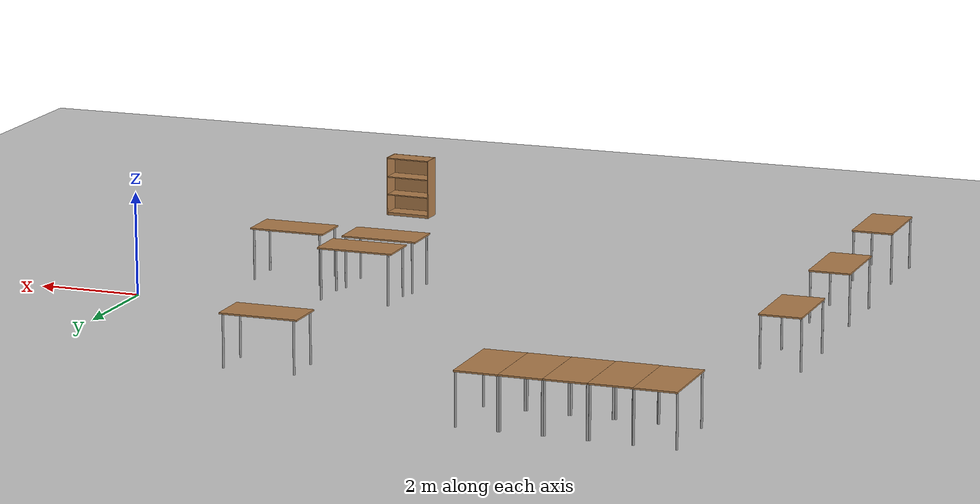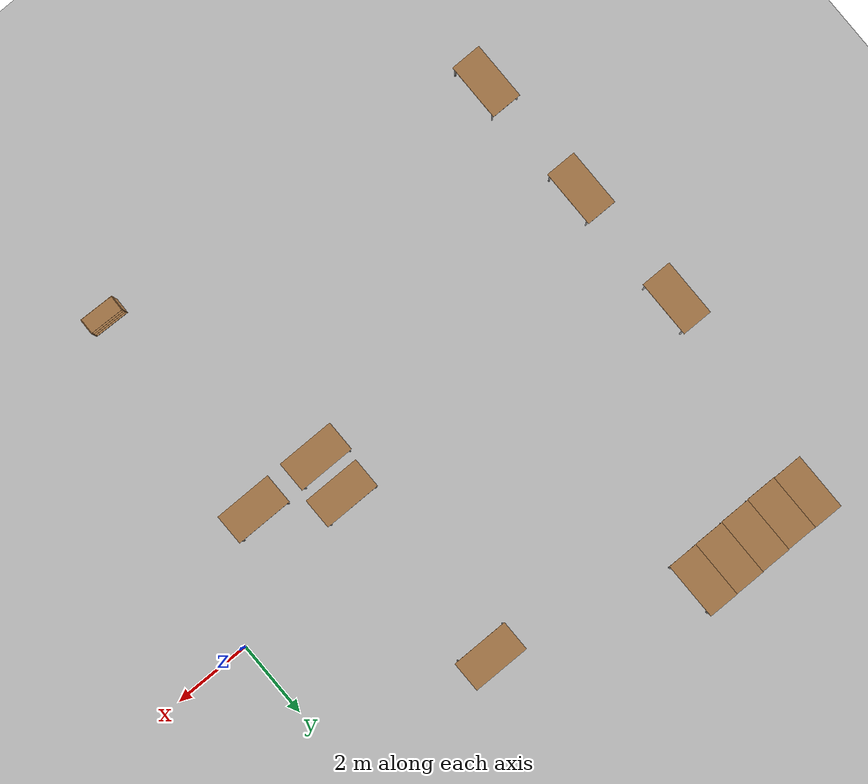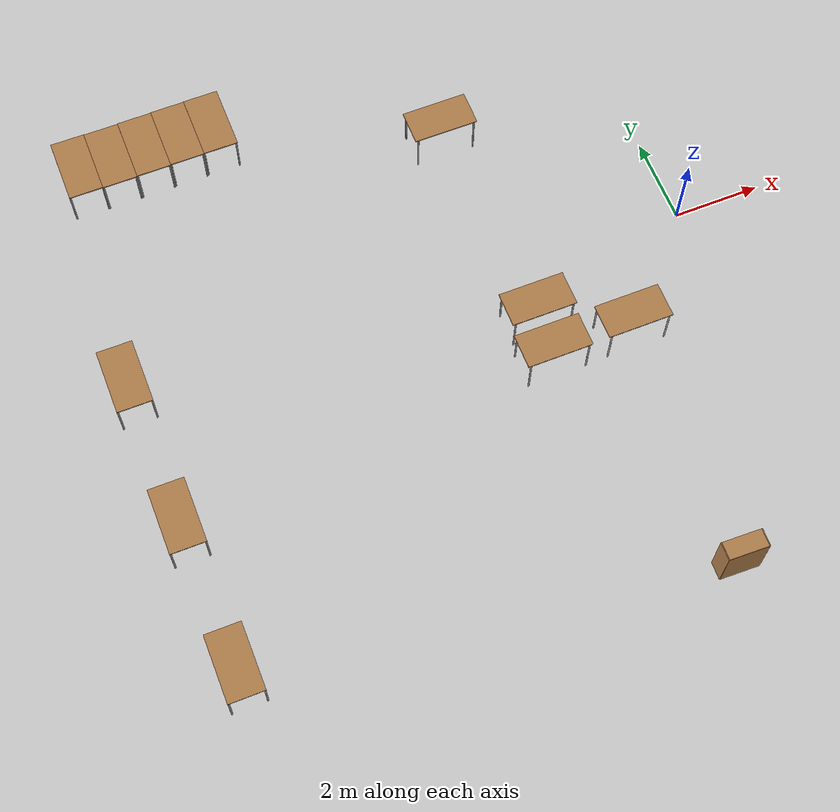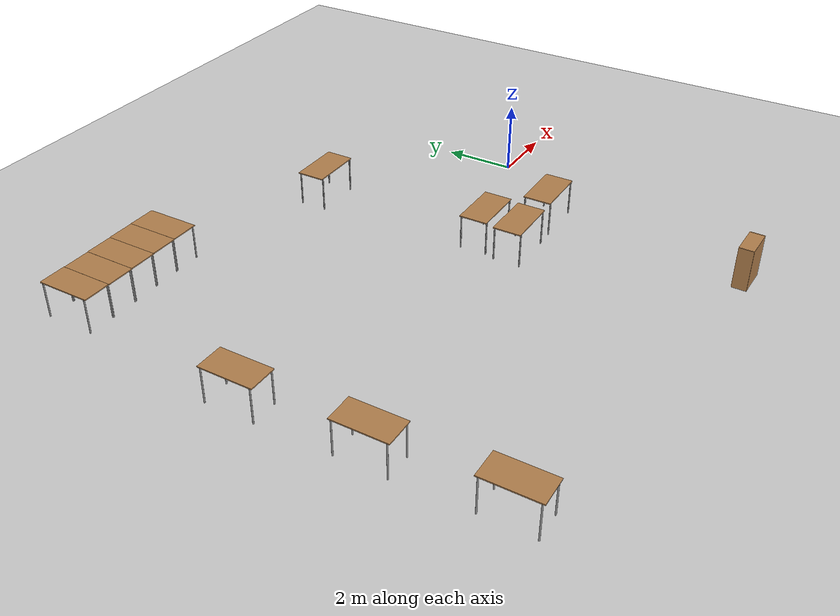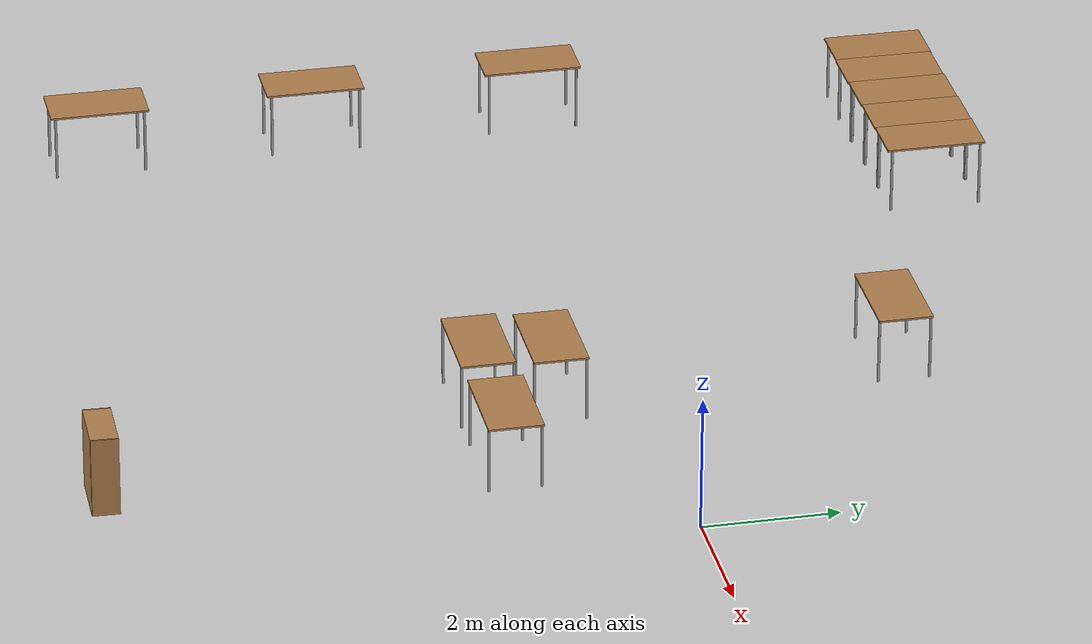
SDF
<sdf version="1.6">
 <world name="default">
  <model name="ground_plane">
   <static>1</static>
   <link name="link">
    <collision name="collision">
     <geometry><plane><normal>0 0 1</normal><size>100 100</size></plane></geometry>
     <surface>
      <contact><collide_bitmask>65535</collide_bitmask></contact>
      <friction><ode><mu>100</mu><mu2>50</mu2></ode></friction>
     </surface>
    </collision>
    <visual name="visual">
     <cast_shadows>0</cast_shadows>
     <geometry><plane><normal>0 0 1</normal><size>100 100</size></plane></geometry>
     <material>
      <script><uri>file://media/materials/scripts/gazebo.material</uri><name>Gazebo/Grey</name></script>
     </material>
    </visual>
   </link>
  </model>
  <model name="table">
   <static>1</static>
   <link name="link">
    <collision name="surface">
     <pose>0 0 1 0 -0 0</pose>
     <geometry><box><size>1.5 0.8 0.03</size></box></geometry>
     <surface><friction><ode><mu>0.6</mu><mu2>0.6</mu2></ode></friction></surface>
    </collision>
    <visual name="visual1">
     <pose>0 0 1 0 -0 0</pose>
     <geometry><box><size>1.5 0.8 0.03</size></box></geometry>
     <material>
      <script><uri>file://media/materials/scripts/gazebo.material</uri><name>Gazebo/Wood</name></script>
     </material>
    </visual>
    <collision name="front_left_leg">
     <pose>0.68 0.38 0.5 0 -0 0</pose>
     <geometry><cylinder><radius>0.02</radius><length>1</length></cylinder></geometry>
    </collision>
    <visual name="front_left_leg">
     <pose>0.68 0.38 0.5 0 -0 0</pose>
     <geometry><cylinder><radius>0.02</radius><length>1</length></cylinder></geometry>
     <material>
      <script><uri>file://media/materials/scripts/gazebo.material</uri><name>Gazebo/Grey</name></script>
     </material>
    </visual>
    <collision name="front_right_leg">
     <pose>0.68 -0.38 0.5 0 -0 0</pose>
     <geometry><cylinder><radius>0.02</radius><length>1</length></cylinder></geometry>
    </collision>
    <visual name="front_right_leg">
     <pose>0.68 -0.38 0.5 0 -0 0</pose>
     <geometry><cylinder><radius>0.02</radius><length>1</length></cylinder></geometry>
     <material>
      <script><uri>file://media/materials/scripts/gazebo.material</uri><name>Gazebo/Grey</name></script>
     </material>
    </visual>
    <collision name="back_right_leg">
     <pose>-0.68 -0.38 0.5 0 -0 0</pose>
     <geometry><cylinder><radius>0.02</radius><length>1</length></cylinder></geometry>
    </collision>
    <visual name="back_right_leg">
     <pose>-0.68 -0.38 0.5 0 -0 0</pose>
     <geometry><cylinder><radius>0.02</radius><length>1</length></cylinder></geometry>
     <material>
      <script><uri>file://media/materials/scripts/gazebo.material</uri><name>Gazebo/Grey</name></script>
     </material>
    </visual>
    <collision name="back_left_leg">
     <pose>-0.68 0.38 0.5 0 -0 0</pose>
     <geometry><cylinder><radius>0.02</radius><length>1</length></cylinder></geometry>
    </collision>
    <visual name="back_left_leg">
     <pose>-0.68 0.38 0.5 0 -0 0</pose>
     <geometry><cylinder><radius>0.02</radius><length>1</length></cylinder></geometry>
     <material>
      <script><uri>file://media/materials/scripts/gazebo.material</uri><name>Gazebo/Grey</name></script>
     </material>
    </visual>
   </link>
   <pose>-4.15428 -2.32364 0 0 -0 0</pose>
  </model>
  <model name="table_0">
   <static>1</static>
   <link name="link">
    <collision name="surface">
     <pose>0 0 1 0 -0 0</pose>
     <geometry><box><size>1.5 0.8 0.03</size></box></geometry>
     <surface><friction><ode><mu>0.6</mu><mu2>0.6</mu2></ode></friction></surface>
    </collision>
    <visual name="visual1">
     <pose>0 0 1 0 -0 0</pose>
     <geometry><box><size>1.5 0.8 0.03</size></box></geometry>
     <material>
      <script><uri>file://media/materials/scripts/gazebo.material</uri><name>Gazebo/Wood</name></script>
     </material>
    </visual>
    <collision name="front_left_leg">
     <pose>0.68 0.38 0.5 0 -0 0</pose>
     <geometry><cylinder><radius>0.02</radius><length>1</length></cylinder></geometry>
    </collision>
    <visual name="front_left_leg">
     <pose>0.68 0.38 0.5 0 -0 0</pose>
     <geometry><cylinder><radius>0.02</radius><length>1</length></cylinder></geometry>
     <material>
      <script><uri>file://media/materials/scripts/gazebo.material</uri><name>Gazebo/Grey</name></script>
     </material>
    </visual>
    <collision name="front_right_leg">
     <pose>0.68 -0.38 0.5 0 -0 0</pose>
     <geometry><cylinder><radius>0.02</radius><length>1</length></cylinder></geometry>
    </collision>
    <visual name="front_right_leg">
     <pose>0.68 -0.38 0.5 0 -0 0</pose>
     <geometry><cylinder><radius>0.02</radius><length>1</length></cylinder></geometry>
     <material>
      <script><uri>file://media/materials/scripts/gazebo.material</uri><name>Gazebo/Grey</name></script>
     </material>
    </visual>
    <collision name="back_right_leg">
     <pose>-0.68 -0.38 0.5 0 -0 0</pose>
     <geometry><cylinder><radius>0.02</radius><length>1</length></cylinder></geometry>
    </collision>
    <visual name="back_right_leg">
     <pose>-0.68 -0.38 0.5 0 -0 0</pose>
     <geometry><cylinder><radius>0.02</radius><length>1</length></cylinder></geometry>
     <material>
      <script><uri>file://media/materials/scripts/gazebo.material</uri><name>Gazebo/Grey</name></script>
     </material>
    </visual>
    <collision name="back_left_leg">
     <pose>-0.68 0.38 0.5 0 -0 0</pose>
     <geometry><cylinder><radius>0.02</radius><length>1</length></cylinder></geometry>
    </collision>
    <visual name="back_left_leg">
     <pose>-0.68 0.38 0.5 0 -0 0</pose>
     <geometry><cylinder><radius>0.02</radius><length>1</length></cylinder></geometry>
     <material>
      <script><uri>file://media/materials/scripts/gazebo.material</uri><name>Gazebo/Grey</name></script>
     </material>
    </visual>
   </link>
   <pose>-2.26331 -2.3073 0 0 -0 0</pose>
  </model>
  <model name="table_1">
   <static>1</static>
   <link name="link">
    <collision name="surface">
     <pose>0 0 1 0 -0 0</pose>
     <geometry><box><size>1.5 0.8 0.03</size></box></geometry>
     <surface><friction><ode><mu>0.6</mu><mu2>0.6</mu2></ode></friction></surface>
    </collision>
    <visual name="visual1">
     <pose>0 0 1 0 -0 0</pose>
     <geometry><box><size>1.5 0.8 0.03</size></box></geometry>
     <material>
      <script><uri>file://media/materials/scripts/gazebo.material</uri><name>Gazebo/Wood</name></script>
     </material>
    </visual>
    <collision name="front_left_leg">
     <pose>0.68 0.38 0.5 0 -0 0</pose>
     <geometry><cylinder><radius>0.02</radius><length>1</length></cylinder></geometry>
    </collision>
    <visual name="front_left_leg">
     <pose>0.68 0.38 0.5 0 -0 0</pose>
     <geometry><cylinder><radius>0.02</radius><length>1</length></cylinder></geometry>
     <material>
      <script><uri>file://media/materials/scripts/gazebo.material</uri><name>Gazebo/Grey</name></script>
     </material>
    </visual>
    <collision name="front_right_leg">
     <pose>0.68 -0.38 0.5 0 -0 0</pose>
     <geometry><cylinder><radius>0.02</radius><length>1</length></cylinder></geometry>
    </collision>
    <visual name="front_right_leg">
     <pose>0.68 -0.38 0.5 0 -0 0</pose>
     <geometry><cylinder><radius>0.02</radius><length>1</length></cylinder></geometry>
     <material>
      <script><uri>file://media/materials/scripts/gazebo.material</uri><name>Gazebo/Grey</name></script>
     </material>
    </visual>
    <collision name="back_right_leg">
     <pose>-0.68 -0.38 0.5 0 -0 0</pose>
     <geometry><cylinder><radius>0.02</radius><length>1</length></cylinder></geometry>
    </collision>
    <visual name="back_right_leg">
     <pose>-0.68 -0.38 0.5 0 -0 0</pose>
     <geometry><cylinder><radius>0.02</radius><length>1</length></cylinder></geometry>
     <material>
      <script><uri>file://media/materials/scripts/gazebo.material</uri><name>Gazebo/Grey</name></script>
     </material>
    </visual>
    <collision name="back_left_leg">
     <pose>-0.68 0.38 0.5 0 -0 0</pose>
     <geometry><cylinder><radius>0.02</radius><length>1</length></cylinder></geometry>
    </collision>
    <visual name="back_left_leg">
     <pose>-0.68 0.38 0.5 0 -0 0</pose>
     <geometry><cylinder><radius>0.02</radius><length>1</length></cylinder></geometry>
     <material>
      <script><uri>file://media/materials/scripts/gazebo.material</uri><name>Gazebo/Grey</name></script>
     </material>
    </visual>
   </link>
   <pose>-4.07153 -1.28187 0 0 -0 0</pose>
  </model>
  <model name="table_12">
   <static>1</static>
   <link name="link">
    <collision name="surface">
     <pose>0 0 1 0 -0 0</pose>
     <geometry><box><size>1.5 0.8 0.03</size></box></geometry>
     <surface><friction><ode><mu>0.6</mu><mu2>0.6</mu2></ode></friction></surface>
    </collision>
    <visual name="visual1">
     <pose>0 0 1 0 -0 0</pose>
     <geometry><box><size>1.5 0.8 0.03</size></box></geometry>
     <material>
      <script><uri>file://media/materials/scripts/gazebo.material</uri><name>Gazebo/Wood</name></script>
     </material>
    </visual>
    <collision name="front_left_leg">
     <pose>0.68 0.38 0.5 0 -0 0</pose>
     <geometry><cylinder><radius>0.02</radius><length>1</length></cylinder></geometry>
    </collision>
    <visual name="front_left_leg">
     <pose>0.68 0.38 0.5 0 -0 0</pose>
     <geometry><cylinder><radius>0.02</radius><length>1</length></cylinder></geometry>
     <material>
      <script><uri>file://media/materials/scripts/gazebo.material</uri><name>Gazebo/Grey</name></script>
     </material>
    </visual>
    <collision name="front_right_leg">
     <pose>0.68 -0.38 0.5 0 -0 0</pose>
     <geometry><cylinder><radius>0.02</radius><length>1</length></cylinder></geometry>
    </collision>
    <visual name="front_right_leg">
     <pose>0.68 -0.38 0.5 0 -0 0</pose>
     <geometry><cylinder><radius>0.02</radius><length>1</length></cylinder></geometry>
     <material>
      <script><uri>file://media/materials/scripts/gazebo.material</uri><name>Gazebo/Grey</name></script>
     </material>
    </visual>
    <collision name="back_right_leg">
     <pose>-0.68 -0.38 0.5 0 -0 0</pose>
     <geometry><cylinder><radius>0.02</radius><length>1</length></cylinder></geometry>
    </collision>
    <visual name="back_right_leg">
     <pose>-0.68 -0.38 0.5 0 -0 0</pose>
     <geometry><cylinder><radius>0.02</radius><length>1</length></cylinder></geometry>
     <material>
      <script><uri>file://media/materials/scripts/gazebo.material</uri><name>Gazebo/Grey</name></script>
     </material>
    </visual>
    <collision name="back_left_leg">
     <pose>-0.68 0.38 0.5 0 -0 0</pose>
     <geometry><cylinder><radius>0.02</radius><length>1</length></cylinder></geometry>
    </collision>
    <visual name="back_left_leg">
     <pose>-0.68 0.38 0.5 0 -0 0</pose>
     <geometry><cylinder><radius>0.02</radius><length>1</length></cylinder></geometry>
     <material>
      <script><uri>file://media/materials/scripts/gazebo.material</uri><name>Gazebo/Grey</name></script>
     </material>
    </visual>
   </link>
   <pose>-4.30223 3.82653 0 0 -0 0</pose>
  </model>
  <model name="table_13">
   <static>1</static>
   <link name="link">
    <collision name="surface">
     <pose>0 0 1 0 -0 0</pose>
     <geometry><box><size>1.5 0.8 0.03</size></box></geometry>
     <surface><friction><ode><mu>0.6</mu><mu2>0.6</mu2></ode></friction></surface>
    </collision>
    <visual name="visual1">
     <pose>0 0 1 0 -0 0</pose>
     <geometry><box><size>1.5 0.8 0.03</size></box></geometry>
     <material>
      <script><uri>file://media/materials/scripts/gazebo.material</uri><name>Gazebo/Wood</name></script>
     </material>
    </visual>
    <collision name="front_left_leg">
     <pose>0.68 0.38 0.5 0 -0 0</pose>
     <geometry><cylinder><radius>0.02</radius><length>1</length></cylinder></geometry>
    </collision>
    <visual name="front_left_leg">
     <pose>0.68 0.38 0.5 0 -0 0</pose>
     <geometry><cylinder><radius>0.02</radius><length>1</length></cylinder></geometry>
     <material>
      <script><uri>file://media/materials/scripts/gazebo.material</uri><name>Gazebo/Grey</name></script>
     </material>
    </visual>
    <collision name="front_right_leg">
     <pose>0.68 -0.38 0.5 0 -0 0</pose>
     <geometry><cylinder><radius>0.02</radius><length>1</length></cylinder></geometry>
    </collision>
    <visual name="front_right_leg">
     <pose>0.68 -0.38 0.5 0 -0 0</pose>
     <geometry><cylinder><radius>0.02</radius><length>1</length></cylinder></geometry>
     <material>
      <script><uri>file://media/materials/scripts/gazebo.material</uri><name>Gazebo/Grey</name></script>
     </material>
    </visual>
    <collision name="back_right_leg">
     <pose>-0.68 -0.38 0.5 0 -0 0</pose>
     <geometry><cylinder><radius>0.02</radius><length>1</length></cylinder></geometry>
    </collision>
    <visual name="back_right_leg">
     <pose>-0.68 -0.38 0.5 0 -0 0</pose>
     <geometry><cylinder><radius>0.02</radius><length>1</length></cylinder></geometry>
     <material>
      <script><uri>file://media/materials/scripts/gazebo.material</uri><name>Gazebo/Grey</name></script>
     </material>
    </visual>
    <collision name="back_left_leg">
     <pose>-0.68 0.38 0.5 0 -0 0</pose>
     <geometry><cylinder><radius>0.02</radius><length>1</length></cylinder></geometry>
    </collision>
    <visual name="back_left_leg">
     <pose>-0.68 0.38 0.5 0 -0 0</pose>
     <geometry><cylinder><radius>0.02</radius><length>1</length></cylinder></geometry>
     <material>
      <script><uri>file://media/materials/scripts/gazebo.material</uri><name>Gazebo/Grey</name></script>
     </material>
    </visual>
   </link>
   <pose>-12.9508 0.225132 0.002096 -0.000489 -1e-06 -1.57229</pose>
  </model>
  <model name="table_13_clone">
   <static>1</static>
   <link name="link">
    <collision name="surface">
     <pose>0 0 1 0 -0 0</pose>
     <geometry><box><size>1.5 0.8 0.03</size></box></geometry>
     <surface><friction><ode><mu>0.6</mu><mu2>0.6</mu2></ode></friction></surface>
    </collision>
    <visual name="visual1">
     <pose>0 0 1 0 -0 0</pose>
     <geometry><box><size>1.5 0.8 0.03</size></box></geometry>
     <material>
      <script><uri>file://media/materials/scripts/gazebo.material</uri><name>Gazebo/Wood</name></script>
     </material>
    </visual>
    <collision name="front_left_leg">
     <pose>0.68 0.38 0.5 0 -0 0</pose>
     <geometry><cylinder><radius>0.02</radius><length>1</length></cylinder></geometry>
    </collision>
    <visual name="front_left_leg">
     <pose>0.68 0.38 0.5 0 -0 0</pose>
     <geometry><cylinder><radius>0.02</radius><length>1</length></cylinder></geometry>
     <material>
      <script><uri>file://media/materials/scripts/gazebo.material</uri><name>Gazebo/Grey</name></script>
     </material>
    </visual>
    <collision name="front_right_leg">
     <pose>0.68 -0.38 0.5 0 -0 0</pose>
     <geometry><cylinder><radius>0.02</radius><length>1</length></cylinder></geometry>
    </collision>
    <visual name="front_right_leg">
     <pose>0.68 -0.38 0.5 0 -0 0</pose>
     <geometry><cylinder><radius>0.02</radius><length>1</length></cylinder></geometry>
     <material>
      <script><uri>file://media/materials/scripts/gazebo.material</uri><name>Gazebo/Grey</name></script>
     </material>
    </visual>
    <collision name="back_right_leg">
     <pose>-0.68 -0.38 0.5 0 -0 0</pose>
     <geometry><cylinder><radius>0.02</radius><length>1</length></cylinder></geometry>
    </collision>
    <visual name="back_right_leg">
     <pose>-0.68 -0.38 0.5 0 -0 0</pose>
     <geometry><cylinder><radius>0.02</radius><length>1</length></cylinder></geometry>
     <material>
      <script><uri>file://media/materials/scripts/gazebo.material</uri><name>Gazebo/Grey</name></script>
     </material>
    </visual>
    <collision name="back_left_leg">
     <pose>-0.68 0.38 0.5 0 -0 0</pose>
     <geometry><cylinder><radius>0.02</radius><length>1</length></cylinder></geometry>
    </collision>
    <visual name="back_left_leg">
     <pose>-0.68 0.38 0.5 0 -0 0</pose>
     <geometry><cylinder><radius>0.02</radius><length>1</length></cylinder></geometry>
     <material>
      <script><uri>file://media/materials/scripts/gazebo.material</uri><name>Gazebo/Grey</name></script>
     </material>
    </visual>
   </link>
   <pose>-12.8952 -3.16682 0.002109 -0.000489 -1e-06 -1.57229</pose>
  </model>
  <model name="table_13_clone_clone">
   <static>1</static>
   <link name="link">
    <collision name="surface">
     <pose>0 0 1 0 -0 0</pose>
     <geometry><box><size>1.5 0.8 0.03</size></box></geometry>
     <surface><friction><ode><mu>0.6</mu><mu2>0.6</mu2></ode></friction></surface>
    </collision>
    <visual name="visual1">
     <pose>0 0 1 0 -0 0</pose>
     <geometry><box><size>1.5 0.8 0.03</size></box></geometry>
     <material>
      <script><uri>file://media/materials/scripts/gazebo.material</uri><name>Gazebo/Wood</name></script>
     </material>
    </visual>
    <collision name="front_left_leg">
     <pose>0.68 0.38 0.5 0 -0 0</pose>
     <geometry><cylinder><radius>0.02</radius><length>1</length></cylinder></geometry>
    </collision>
    <visual name="front_left_leg">
     <pose>0.68 0.38 0.5 0 -0 0</pose>
     <geometry><cylinder><radius>0.02</radius><length>1</length></cylinder></geometry>
     <material>
      <script><uri>file://media/materials/scripts/gazebo.material</uri><name>Gazebo/Grey</name></script>
     </material>
    </visual>
    <collision name="front_right_leg">
     <pose>0.68 -0.38 0.5 0 -0 0</pose>
     <geometry><cylinder><radius>0.02</radius><length>1</length></cylinder></geometry>
    </collision>
    <visual name="front_right_leg">
     <pose>0.68 -0.38 0.5 0 -0 0</pose>
     <geometry><cylinder><radius>0.02</radius><length>1</length></cylinder></geometry>
     <material>
      <script><uri>file://media/materials/scripts/gazebo.material</uri><name>Gazebo/Grey</name></script>
     </material>
    </visual>
    <collision name="back_right_leg">
     <pose>-0.68 -0.38 0.5 0 -0 0</pose>
     <geometry><cylinder><radius>0.02</radius><length>1</length></cylinder></geometry>
    </collision>
    <visual name="back_right_leg">
     <pose>-0.68 -0.38 0.5 0 -0 0</pose>
     <geometry><cylinder><radius>0.02</radius><length>1</length></cylinder></geometry>
     <material>
      <script><uri>file://media/materials/scripts/gazebo.material</uri><name>Gazebo/Grey</name></script>
     </material>
    </visual>
    <collision name="back_left_leg">
     <pose>-0.68 0.38 0.5 0 -0 0</pose>
     <geometry><cylinder><radius>0.02</radius><length>1</length></cylinder></geometry>
    </collision>
    <visual name="back_left_leg">
     <pose>-0.68 0.38 0.5 0 -0 0</pose>
     <geometry><cylinder><radius>0.02</radius><length>1</length></cylinder></geometry>
     <material>
      <script><uri>file://media/materials/scripts/gazebo.material</uri><name>Gazebo/Grey</name></script>
     </material>
    </visual>
   </link>
   <pose>-12.7992 -6.50166 0.002057 -0.000489 -1e-06 -1.57229</pose>
  </model>
  <model name="bookshelf_clone">
   <static>1</static>
   <link name="link">
    <inertial><mass>1</mass></inertial>
    <collision name="back">
     <pose>0 0.005 0.6 0 -0 0</pose>
     <geometry><box><size>0.9 0.01 1.2</size></box></geometry>
    </collision>
    <visual name="visual1">
     <pose>0 0.005 0.6 0 -0 0</pose>
     <geometry><box><size>0.9 0.01 1.2</size></box></geometry>
     <material>
      <script><uri>file://media/materials/scripts/gazebo.material</uri><name>Gazebo/Wood</name></script>
     </material>
    </visual>
    <collision name="left_side">
     <pose>0.45 -0.195 0.6 0 -0 0</pose>
     <geometry><box><size>0.02 0.4 1.2</size></box></geometry>
    </collision>
    <visual name="visual2">
     <pose>0.45 -0.195 0.6 0 -0 0</pose>
     <geometry><box><size>0.02 0.4 1.2</size></box></geometry>
     <material>
      <script><uri>file://media/materials/scripts/gazebo.material</uri><name>Gazebo/Wood</name></script>
     </material>
    </visual>
    <collision name="right_side">
     <pose>-0.45 -0.195 0.6 0 -0 0</pose>
     <geometry><box><size>0.02 0.4 1.2</size></box></geometry>
    </collision>
    <visual name="visual3">
     <pose>-0.45 -0.195 0.6 0 -0 0</pose>
     <geometry><box><size>0.02 0.4 1.2</size></box></geometry>
     <material>
      <script><uri>file://media/materials/scripts/gazebo.material</uri><name>Gazebo/Wood</name></script>
     </material>
    </visual>
    <collision name="bottom">
     <pose>0 -0.195 0.03 0 -0 0</pose>
     <geometry><box><size>0.88 0.4 0.06</size></box></geometry>
    </collision>
    <visual name="visual4">
     <pose>0 -0.195 0.03 0 -0 0</pose>
     <geometry><box><size>0.88 0.4 0.06</size></box></geometry>
     <material>
      <script><uri>file://media/materials/scripts/gazebo.material</uri><name>Gazebo/Wood</name></script>
     </material>
    </visual>
    <collision name="top">
     <pose>0 -0.195 1.19 0 -0 0</pose>
     <geometry><box><size>0.88 0.4 0.02</size></box></geometry>
    </collision>
    <visual name="visual5">
     <pose>0 -0.195 1.19 0 -0 0</pose>
     <geometry><box><size>0.88 0.4 0.02</size></box></geometry>
     <material>
      <script><uri>file://media/materials/scripts/gazebo.material</uri><name>Gazebo/Wood</name></script>
     </material>
    </visual>
    <collision name="low_shelf">
     <pose>0 -0.195 0.43 0 -0 0</pose>
     <geometry><box><size>0.88 0.4 0.02</size></box></geometry>
    </collision>
    <visual name="visual6">
     <pose>0 -0.195 0.43 0 -0 0</pose>
     <geometry><box><size>0.88 0.4 0.02</size></box></geometry>
     <material>
      <script><uri>file://media/materials/scripts/gazebo.material</uri><name>Gazebo/Wood</name></script>
     </material>
    </visual>
    <collision name="high_shelf">
     <pose>0 -0.195 0.8 0 -0 0</pose>
     <geometry><box><size>0.88 0.4 0.02</size></box></geometry>
    </collision>
    <visual name="visual7">
     <pose>0 -0.195 0.8 0 -0 0</pose>
     <geometry><box><size>0.88 0.4 0.02</size></box></geometry>
     <material>
      <script><uri>file://media/materials/scripts/gazebo.material</uri><name>Gazebo/Wood</name></script>
     </material>
    </visual>
   </link>
   <pose>-2.45227 -8.22563 0 0 -0 3.11086</pose>
  </model>
  <model name="table_13_clone_0">
   <static>1</static>
   <link name="link">
    <collision name="surface">
     <pose>0 0 1 0 -0 0</pose>
     <geometry><box><size>1.5 0.8 0.03</size></box></geometry>
     <surface><friction><ode><mu>0.6</mu><mu2>0.6</mu2></ode></friction></surface>
    </collision>
    <visual name="visual1">
     <pose>0 0 1 0 -0 0</pose>
     <geometry><box><size>1.5 0.8 0.03</size></box></geometry>
     <material>
      <script><uri>file://media/materials/scripts/gazebo.material</uri><name>Gazebo/Wood</name></script>
     </material>
    </visual>
    <collision name="front_left_leg">
     <pose>0.68 0.38 0.5 0 -0 0</pose>
     <geometry><cylinder><radius>0.02</radius><length>1</length></cylinder></geometry>
    </collision>
    <visual name="front_left_leg">
     <pose>0.68 0.38 0.5 0 -0 0</pose>
     <geometry><cylinder><radius>0.02</radius><length>1</length></cylinder></geometry>
     <material>
      <script><uri>file://media/materials/scripts/gazebo.material</uri><name>Gazebo/Grey</name></script>
     </material>
    </visual>
    <collision name="front_right_leg">
     <pose>0.68 -0.38 0.5 0 -0 0</pose>
     <geometry><cylinder><radius>0.02</radius><length>1</length></cylinder></geometry>
    </collision>
    <visual name="front_right_leg">
     <pose>0.68 -0.38 0.5 0 -0 0</pose>
     <geometry><cylinder><radius>0.02</radius><length>1</length></cylinder></geometry>
     <material>
      <script><uri>file://media/materials/scripts/gazebo.material</uri><name>Gazebo/Grey</name></script>
     </material>
    </visual>
    <collision name="back_right_leg">
     <pose>-0.68 -0.38 0.5 0 -0 0</pose>
     <geometry><cylinder><radius>0.02</radius><length>1</length></cylinder></geometry>
    </collision>
    <visual name="back_right_leg">
     <pose>-0.68 -0.38 0.5 0 -0 0</pose>
     <geometry><cylinder><radius>0.02</radius><length>1</length></cylinder></geometry>
     <material>
      <script><uri>file://media/materials/scripts/gazebo.material</uri><name>Gazebo/Grey</name></script>
     </material>
    </visual>
    <collision name="back_left_leg">
     <pose>-0.68 0.38 0.5 0 -0 0</pose>
     <geometry><cylinder><radius>0.02</radius><length>1</length></cylinder></geometry>
    </collision>
    <visual name="back_left_leg">
     <pose>-0.68 0.38 0.5 0 -0 0</pose>
     <geometry><cylinder><radius>0.02</radius><length>1</length></cylinder></geometry>
     <material>
      <script><uri>file://media/materials/scripts/gazebo.material</uri><name>Gazebo/Grey</name></script>
     </material>
    </visual>
   </link>
   <pose>-12.3756 5.62057 0.002096 -0.000489 -1e-06 -1.57229</pose>
  </model>
  <model name="table_13_clone_1">
   <static>1</static>
   <link name="link">
    <collision name="surface">
     <pose>0 0 1 0 -0 0</pose>
     <geometry><box><size>1.5 0.8 0.03</size></box></geometry>
     <surface><friction><ode><mu>0.6</mu><mu2>0.6</mu2></ode></friction></surface>
    </collision>
    <visual name="visual1">
     <pose>0 0 1 0 -0 0</pose>
     <geometry><box><size>1.5 0.8 0.03</size></box></geometry>
     <material>
      <script><uri>file://media/materials/scripts/gazebo.material</uri><name>Gazebo/Wood</name></script>
     </material>
    </visual>
    <collision name="front_left_leg">
     <pose>0.68 0.38 0.5 0 -0 0</pose>
     <geometry><cylinder><radius>0.02</radius><length>1</length></cylinder></geometry>
    </collision>
    <visual name="front_left_leg">
     <pose>0.68 0.38 0.5 0 -0 0</pose>
     <geometry><cylinder><radius>0.02</radius><length>1</length></cylinder></geometry>
     <material>
      <script><uri>file://media/materials/scripts/gazebo.material</uri><name>Gazebo/Grey</name></script>
     </material>
    </visual>
    <collision name="front_right_leg">
     <pose>0.68 -0.38 0.5 0 -0 0</pose>
     <geometry><cylinder><radius>0.02</radius><length>1</length></cylinder></geometry>
    </collision>
    <visual name="front_right_leg">
     <pose>0.68 -0.38 0.5 0 -0 0</pose>
     <geometry><cylinder><radius>0.02</radius><length>1</length></cylinder></geometry>
     <material>
      <script><uri>file://media/materials/scripts/gazebo.material</uri><name>Gazebo/Grey</name></script>
     </material>
    </visual>
    <collision name="back_right_leg">
     <pose>-0.68 -0.38 0.5 0 -0 0</pose>
     <geometry><cylinder><radius>0.02</radius><length>1</length></cylinder></geometry>
    </collision>
    <visual name="back_right_leg">
     <pose>-0.68 -0.38 0.5 0 -0 0</pose>
     <geometry><cylinder><radius>0.02</radius><length>1</length></cylinder></geometry>
     <material>
      <script><uri>file://media/materials/scripts/gazebo.material</uri><name>Gazebo/Grey</name></script>
     </material>
    </visual>
    <collision name="back_left_leg">
     <pose>-0.68 0.38 0.5 0 -0 0</pose>
     <geometry><cylinder><radius>0.02</radius><length>1</length></cylinder></geometry>
    </collision>
    <visual name="back_left_leg">
     <pose>-0.68 0.38 0.5 0 -0 0</pose>
     <geometry><cylinder><radius>0.02</radius><length>1</length></cylinder></geometry>
     <material>
      <script><uri>file://media/materials/scripts/gazebo.material</uri><name>Gazebo/Grey</name></script>
     </material>
    </visual>
   </link>
   <pose>-11.5994 5.60858 0.002096 -0.000489 -1e-06 -1.57229</pose>
  </model>
  <model name="table_13_clone_2">
   <static>1</static>
   <link name="link">
    <collision name="surface">
     <pose>0 0 1 0 -0 0</pose>
     <geometry><box><size>1.5 0.8 0.03</size></box></geometry>
     <surface><friction><ode><mu>0.6</mu><mu2>0.6</mu2></ode></friction></surface>
    </collision>
    <visual name="visual1">
     <pose>0 0 1 0 -0 0</pose>
     <geometry><box><size>1.5 0.8 0.03</size></box></geometry>
     <material>
      <script><uri>file://media/materials/scripts/gazebo.material</uri><name>Gazebo/Wood</name></script>
     </material>
    </visual>
    <collision name="front_left_leg">
     <pose>0.68 0.38 0.5 0 -0 0</pose>
     <geometry><cylinder><radius>0.02</radius><length>1</length></cylinder></geometry>
    </collision>
    <visual name="front_left_leg">
     <pose>0.68 0.38 0.5 0 -0 0</pose>
     <geometry><cylinder><radius>0.02</radius><length>1</length></cylinder></geometry>
     <material>
      <script><uri>file://media/materials/scripts/gazebo.material</uri><name>Gazebo/Grey</name></script>
     </material>
    </visual>
    <collision name="front_right_leg">
     <pose>0.68 -0.38 0.5 0 -0 0</pose>
     <geometry><cylinder><radius>0.02</radius><length>1</length></cylinder></geometry>
    </collision>
    <visual name="front_right_leg">
     <pose>0.68 -0.38 0.5 0 -0 0</pose>
     <geometry><cylinder><radius>0.02</radius><length>1</length></cylinder></geometry>
     <material>
      <script><uri>file://media/materials/scripts/gazebo.material</uri><name>Gazebo/Grey</name></script>
     </material>
    </visual>
    <collision name="back_right_leg">
     <pose>-0.68 -0.38 0.5 0 -0 0</pose>
     <geometry><cylinder><radius>0.02</radius><length>1</length></cylinder></geometry>
    </collision>
    <visual name="back_right_leg">
     <pose>-0.68 -0.38 0.5 0 -0 0</pose>
     <geometry><cylinder><radius>0.02</radius><length>1</length></cylinder></geometry>
     <material>
      <script><uri>file://media/materials/scripts/gazebo.material</uri><name>Gazebo/Grey</name></script>
     </material>
    </visual>
    <collision name="back_left_leg">
     <pose>-0.68 0.38 0.5 0 -0 0</pose>
     <geometry><cylinder><radius>0.02</radius><length>1</length></cylinder></geometry>
    </collision>
    <visual name="back_left_leg">
     <pose>-0.68 0.38 0.5 0 -0 0</pose>
     <geometry><cylinder><radius>0.02</radius><length>1</length></cylinder></geometry>
     <material>
      <script><uri>file://media/materials/scripts/gazebo.material</uri><name>Gazebo/Grey</name></script>
     </material>
    </visual>
   </link>
   <pose>-10.7992 5.62021 0.002096 -0.000489 -1e-06 -1.57229</pose>
  </model>
  <model name="table_13_clone_3">
   <static>1</static>
   <link name="link">
    <collision name="surface">
     <pose>0 0 1 0 -0 0</pose>
     <geometry><box><size>1.5 0.8 0.03</size></box></geometry>
     <surface><friction><ode><mu>0.6</mu><mu2>0.6</mu2></ode></friction></surface>
    </collision>
    <visual name="visual1">
     <pose>0 0 1 0 -0 0</pose>
     <geometry><box><size>1.5 0.8 0.03</size></box></geometry>
     <material>
      <script><uri>file://media/materials/scripts/gazebo.material</uri><name>Gazebo/Wood</name></script>
     </material>
    </visual>
    <collision name="front_left_leg">
     <pose>0.68 0.38 0.5 0 -0 0</pose>
     <geometry><cylinder><radius>0.02</radius><length>1</length></cylinder></geometry>
    </collision>
    <visual name="front_left_leg">
     <pose>0.68 0.38 0.5 0 -0 0</pose>
     <geometry><cylinder><radius>0.02</radius><length>1</length></cylinder></geometry>
     <material>
      <script><uri>file://media/materials/scripts/gazebo.material</uri><name>Gazebo/Grey</name></script>
     </material>
    </visual>
    <collision name="front_right_leg">
     <pose>0.68 -0.38 0.5 0 -0 0</pose>
     <geometry><cylinder><radius>0.02</radius><length>1</length></cylinder></geometry>
    </collision>
    <visual name="front_right_leg">
     <pose>0.68 -0.38 0.5 0 -0 0</pose>
     <geometry><cylinder><radius>0.02</radius><length>1</length></cylinder></geometry>
     <material>
      <script><uri>file://media/materials/scripts/gazebo.material</uri><name>Gazebo/Grey</name></script>
     </material>
    </visual>
    <collision name="back_right_leg">
     <pose>-0.68 -0.38 0.5 0 -0 0</pose>
     <geometry><cylinder><radius>0.02</radius><length>1</length></cylinder></geometry>
    </collision>
    <visual name="back_right_leg">
     <pose>-0.68 -0.38 0.5 0 -0 0</pose>
     <geometry><cylinder><radius>0.02</radius><length>1</length></cylinder></geometry>
     <material>
      <script><uri>file://media/materials/scripts/gazebo.material</uri><name>Gazebo/Grey</name></script>
     </material>
    </visual>
    <collision name="back_left_leg">
     <pose>-0.68 0.38 0.5 0 -0 0</pose>
     <geometry><cylinder><radius>0.02</radius><length>1</length></cylinder></geometry>
    </collision>
    <visual name="back_left_leg">
     <pose>-0.68 0.38 0.5 0 -0 0</pose>
     <geometry><cylinder><radius>0.02</radius><length>1</length></cylinder></geometry>
     <material>
      <script><uri>file://media/materials/scripts/gazebo.material</uri><name>Gazebo/Grey</name></script>
     </material>
    </visual>
   </link>
   <pose>-10.005 5.63035 0.002096 -0.000489 -1e-06 -1.57229</pose>
  </model>
  <model name="table_13_clone_4">
   <static>1</static>
   <link name="link">
    <collision name="surface">
     <pose>0 0 1 0 -0 0</pose>
     <geometry><box><size>1.5 0.8 0.03</size></box></geometry>
     <surface><friction><ode><mu>0.6</mu><mu2>0.6</mu2></ode></friction></surface>
    </collision>
    <visual name="visual1">
     <pose>0 0 1 0 -0 0</pose>
     <geometry><box><size>1.5 0.8 0.03</size></box></geometry>
     <material>
      <script><uri>file://media/materials/scripts/gazebo.material</uri><name>Gazebo/Wood</name></script>
     </material>
    </visual>
    <collision name="front_left_leg">
     <pose>0.68 0.38 0.5 0 -0 0</pose>
     <geometry><cylinder><radius>0.02</radius><length>1</length></cylinder></geometry>
    </collision>
    <visual name="front_left_leg">
     <pose>0.68 0.38 0.5 0 -0 0</pose>
     <geometry><cylinder><radius>0.02</radius><length>1</length></cylinder></geometry>
     <material>
      <script><uri>file://media/materials/scripts/gazebo.material</uri><name>Gazebo/Grey</name></script>
     </material>
    </visual>
    <collision name="front_right_leg">
     <pose>0.68 -0.38 0.5 0 -0 0</pose>
     <geometry><cylinder><radius>0.02</radius><length>1</length></cylinder></geometry>
    </collision>
    <visual name="front_right_leg">
     <pose>0.68 -0.38 0.5 0 -0 0</pose>
     <geometry><cylinder><radius>0.02</radius><length>1</length></cylinder></geometry>
     <material>
      <script><uri>file://media/materials/scripts/gazebo.material</uri><name>Gazebo/Grey</name></script>
     </material>
    </visual>
    <collision name="back_right_leg">
     <pose>-0.68 -0.38 0.5 0 -0 0</pose>
     <geometry><cylinder><radius>0.02</radius><length>1</length></cylinder></geometry>
    </collision>
    <visual name="back_right_leg">
     <pose>-0.68 -0.38 0.5 0 -0 0</pose>
     <geometry><cylinder><radius>0.02</radius><length>1</length></cylinder></geometry>
     <material>
      <script><uri>file://media/materials/scripts/gazebo.material</uri><name>Gazebo/Grey</name></script>
     </material>
    </visual>
    <collision name="back_left_leg">
     <pose>-0.68 0.38 0.5 0 -0 0</pose>
     <geometry><cylinder><radius>0.02</radius><length>1</length></cylinder></geometry>
    </collision>
    <visual name="back_left_leg">
     <pose>-0.68 0.38 0.5 0 -0 0</pose>
     <geometry><cylinder><radius>0.02</radius><length>1</length></cylinder></geometry>
     <material>
      <script><uri>file://media/materials/scripts/gazebo.material</uri><name>Gazebo/Grey</name></script>
     </material>
    </visual>
   </link>
   <pose>-9.2126 5.63744 0.002102 -0.000489 -1e-06 -1.57229</pose>
  </model>
 </world>
</sdf>
